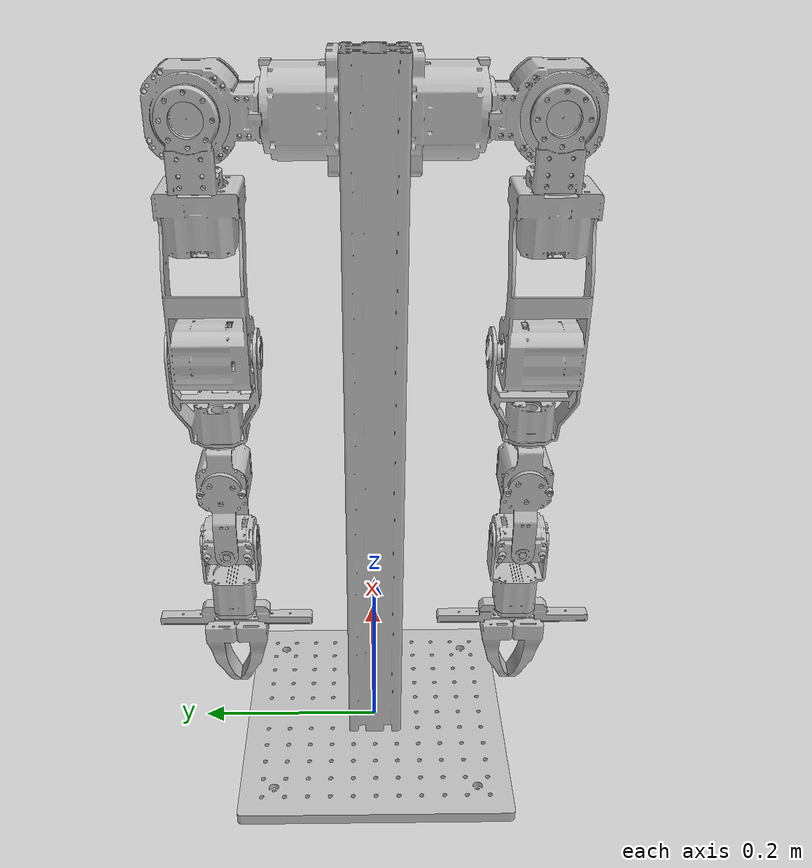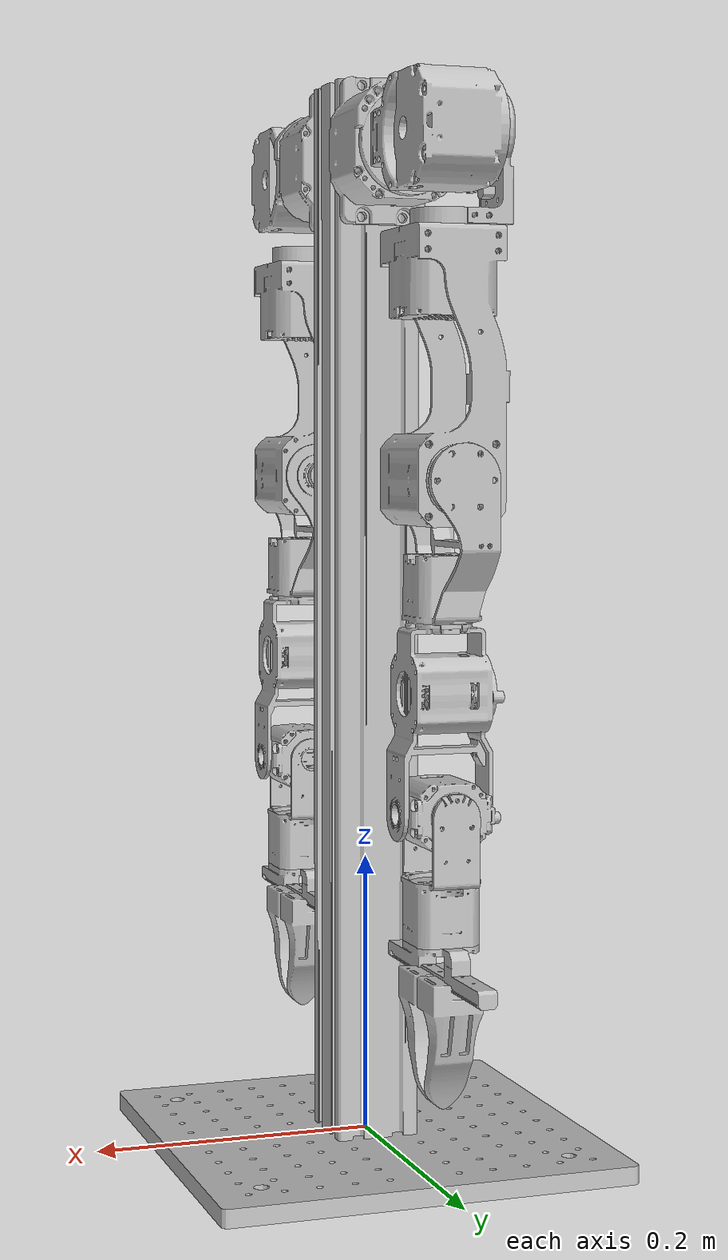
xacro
<?xml version="1.0"?>
<robot xmlns:xacro="http://www.ros.org/wiki/xacro" name="LiteArm_A10_251125_dual">

  <!-- Arguments -->
  <xacro:arg name="left_config_file" default=""/>
  <xacro:arg name="right_config_file" default=""/>
  <xacro:arg name="control_mode" default="position_velocity"/>
  <xacro:arg name="initial_positions_file" default="$(find litearm_config)/config/initial_positions.yaml"/>

  <!-- Import robot description (links and joints) - contains both left and right arms -->
  <xacro:include filename="$(find litearm_a10_251125)/urdf/LiteArm_A10_251125.urdf" />

  <!-- Import hardware ros2_control configurations for both arms -->
  <xacro:include filename="$(find litearm_config)/config/LiteArm_A10_251125_hardware_left_arm.ros2_control.xacro"/>
  <xacro:include filename="$(find litearm_config)/config/LiteArm_A10_251125_hardware.ros2_control.xacro"/>

  <!-- Left arm hardware interface -->
  <xacro:litearm_left_arm_hardware_ros2_control
    name="LiteArmLeftArmHardware"
    config_file="$(arg left_config_file)"
    control_mode="$(arg control_mode)"/>

  <!-- Right arm hardware interface -->
  <xacro:litearm_right_arm_hardware_ros2_control
    name="LiteArmRightArmHardware"
    config_file="$(arg right_config_file)"
    control_mode="$(arg control_mode)"/>

</robot>

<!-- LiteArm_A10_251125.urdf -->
<robot name="LiteArm_A10_251125">
  <mujoco>
    <compiler meshdir="../meshes/" balanceinertia="true" discardvisual="false" inertiafromgeom="false" fusestatic="false" />

  </mujoco>

   <link name="base_link">
     <inertial>
       <origin xyz="0.0 0.0 0.05542218" rpy="0 0 0" />
       <mass value="10.57317707" />
       <inertia ixx="0.35705741" ixy="0.0" ixz="0.0" iyy="0.35705741" iyz="0.0" izz="0.13447021" />
     </inertial>
     <visual>
       <origin xyz="0 0 0" rpy="0 0 0" />
       <geometry>
         <mesh filename="package://litearm_a10_251125/meshes/base_link.STL" />
       </geometry>
       <material name="">
         <color rgba="0.752941176470588 0.752941176470588 0.752941176470588 1" />
       </material>
     </visual>
     <collision>
       <origin xyz="0 0 0" rpy="0 0 0" />
       <geometry>
         <mesh filename="package://litearm_a10_251125/meshes/base_link_simplify.STL" />
       </geometry>
     </collision>
   </link>
   <link name="torso_link">
     <inertial>
       <origin xyz="7.642e-05 0.0 0.00012173" rpy="0 0 0" />
       <mass value="1.94711343" />
       <inertia ixx="0.01104026" ixy="4.23e-06" ixz="-3.57e-06" iyy="0.0021223" iyz="0.0" izz="0.01091172" />
     </inertial>
     <visual>
       <origin xyz="0 0 0" rpy="0 0 0" />
       <geometry>
         <mesh filename="package://litearm_a10_251125/meshes/torso_link.STL" />
       </geometry>
       <material name="">
         <color rgba="0.752941176470588 0.752941176470588 0.752941176470588 1" />
       </material>
     </visual>
     <collision>
       <origin xyz="0 0 0" rpy="0 0 0" />
       <geometry>
         <mesh filename="package://litearm_a10_251125/meshes/torso_link_simplify.STL" />
       </geometry>
     </collision>
   </link>
   <joint name="torso_joint" type="fixed">
     <origin xyz="0 0 0.7" rpy="0 0 0" />
     <parent link="base_link" />
     <child link="torso_link" />
     <axis xyz="0 0 0" />
     <dynamics damping="0.02" friction="0.0"/> <!-- 即使很小的阻尼也能极大改善稳定性 -->
   </joint>
   <link name="l_joint1_link">
     <inertial>
       <origin xyz="-0.00824806 0.05407816 6.022e-05" rpy="0 0 0" />
       <mass value="0.9772017" />
       <inertia ixx="0.00114572" ixy="3.314e-05" ixz="-5e-07" iyy="0.00086384" iyz="-1.53e-06" izz="0.0010431" />
     </inertial>
     <visual>
       <origin xyz="0 0 0" rpy="0 0 0" />
       <geometry>
         <mesh filename="package://litearm_a10_251125/meshes/l_joint1_link.STL" />
       </geometry>
       <material name="">
         <color rgba="0.752941176470588 0.752941176470588 0.752941176470588 1" />
       </material>
     </visual>
     <collision>
       <origin xyz="0 0 0" rpy="0 0 0" />
       <geometry>
         <mesh filename="package://litearm_a10_251125/meshes/l_joint1_link_simplify.STL" />
       </geometry>
     </collision>
   </link>
   <joint name="l_joint1_joint" type="revolute">
     <origin xyz="0 0.096 0" rpy="0 0 0" />
     <parent link="torso_link" />
     <child link="l_joint1_link" />
     <axis xyz="0 1 0" />
     <limit lower="-3.0543" upper="1.6581" effort="75" velocity="6.0737" />
     <dynamics damping="0.02" friction="0.0"/> <!-- 即使很小的阻尼也能极大改善稳定性 -->
   </joint>
   <link name="l_joint2_link">
     <inertial>
       <origin xyz="-0.02317012 0.0 -0.03968965" rpy="0 0 0" />
       <mass value="0.09956239" />
       <inertia ixx="7.689e-05" ixy="0.0" ixz="2.394e-05" iyy="9.208e-05" iyz="0.0" izz="4.871e-05" />
     </inertial>
     <visual>
       <origin xyz="0 0 0" rpy="0 0 0" />
       <geometry>
         <mesh filename="package://litearm_a10_251125/meshes/l_joint2_link.STL" />
       </geometry>
       <material name="">
         <color rgba="0.752941176470588 0.752941176470588 0.752941176470588 1" />
       </material>
     </visual>
     <collision>
       <origin xyz="0 0 0" rpy="0 0 0" />
       <geometry>
         <mesh filename="package://litearm_a10_251125/meshes/l_joint2_link.STL" />
       </geometry>
     </collision>
   </link>
   <joint name="l_joint2_joint" type="revolute">
     <origin xyz="0 0.059 0" rpy="0 0 0" />
     <parent link="l_joint1_link" />
     <child link="l_joint2_link" />
     <axis xyz="-1 0 0" />
     <limit lower="-2.8623" upper="0.27925" effort="75" velocity="6.0737" />
     <dynamics damping="0.02" friction="0.0"/> <!-- 即使很小的阻尼也能极大改善稳定性 -->
   </joint>
   <link name="l_joint3_link">
     <inertial>
       <origin xyz="-0.00293915 -0.00086627 -0.09125362" rpy="0 0 0" />
       <mass value="0.31334613" />
       <inertia ixx="0.00166426" ixy="4e-07" ixz="-1.14e-05" iyy="0.00155026" iyz="-1.701e-05" izz="0.00033935" />
     </inertial>
     <visual>
       <origin xyz="0 0 0" rpy="0 0 0" />
       <geometry>
         <mesh filename="package://litearm_a10_251125/meshes/l_joint3_link.STL" />
       </geometry>
       <material name="">
         <color rgba="0.752941176470588 0.752941176470588 0.752941176470588 1" />
       </material>
     </visual>
     <collision>
       <origin xyz="0 0 0" rpy="0 0 0" />
       <geometry>
         <mesh filename="package://litearm_a10_251125/meshes/l_joint3_link.STL" />
       </geometry>
     </collision>
   </link>
   <joint name="l_joint3_joint" type="revolute">
     <origin xyz="0.00075 0 -0.0646" rpy="0 0 0" />
     <parent link="l_joint2_link" />
     <child link="l_joint3_link" />
     <axis xyz="0 0 -1" />
     <limit lower="-1.5708" upper="1.5708" effort="50" velocity="6.0737" />
     <dynamics damping="0.02" friction="0.0"/> <!-- 即使很小的阻尼也能极大改善稳定性 -->
   </joint>
   <link name="l_joint4_link">
     <inertial>
       <origin xyz="-0.00122074 -0.00107776 -0.05909915" rpy="0 0 0" />
       <mass value="0.35219749" />
       <inertia ixx="0.0004984" ixy="1.9e-07" ixz="6.97e-06" iyy="0.00035525" iyz="2.099e-05" izz="0.00020903" />
     </inertial>
     <visual>
       <origin xyz="0 0 0" rpy="0 0 0" />
       <geometry>
         <mesh filename="package://litearm_a10_251125/meshes/l_joint4_link.STL" />
       </geometry>
       <material name="">
         <color rgba="0.752941176470588 0.752941176470588 0.752941176470588 1" />
       </material>
     </visual>
     <collision>
       <origin xyz="0 0 0" rpy="0 0 0" />
       <geometry>
         <mesh filename="package://litearm_a10_251125/meshes/l_joint4_link.STL" />
       </geometry>
     </collision>
   </link>
   <joint name="l_joint4_joint" type="revolute">
     <origin xyz="0 -5E-05 -0.1615" rpy="0 0 0" />
     <parent link="l_joint3_link" />
     <child link="l_joint4_link" />
     <axis xyz="0 1 0" />
     <limit lower="-2.4435" upper="1.5708" effort="50" velocity="6.0737" />
     <dynamics damping="0.02" friction="0.0"/> <!-- 即使很小的阻尼也能极大改善稳定性 -->
   </joint>
   <link name="l_joint5_link">
     <inertial>
       <origin xyz="-0.00301628 -0.00024339 -0.04784072" rpy="0 0 0" />
       <mass value="0.42918472" />
       <inertia ixx="0.00022593" ixy="2.8e-07" ixz="1.107e-05" iyy="0.0002748" iyz="-3.5e-07" izz="0.0001236" />
     </inertial>
     <visual>
       <origin xyz="0 0 0" rpy="0 0 0" />
       <geometry>
         <mesh filename="package://litearm_a10_251125/meshes/l_joint5_link.STL" />
       </geometry>
       <material name="">
         <color rgba="0.752941176470588 0.752941176470588 0.752941176470588 1" />
       </material>
     </visual>
     <collision>
       <origin xyz="0 0 0" rpy="0 0 0" />
       <geometry>
         <mesh filename="package://litearm_a10_251125/meshes/l_joint5_link.STL" />
       </geometry>
     </collision>
   </link>
   <joint name="l_joint5_joint" type="revolute">
     <origin xyz="0 0 -0.094" rpy="0 0 0" />
     <parent link="l_joint4_link" />
     <child link="l_joint5_link" />
     <axis xyz="0 0 -1" />
     <limit lower="-1.5708" upper="1.5708" effort="10" velocity="10.263" />
     <dynamics damping="0.02" friction="0.0"/> <!-- 即使很小的阻尼也能极大改善稳定性 -->
   </joint>
   <link name="l_joint6_link">
     <inertial>
       <origin xyz="-0.00042158 0.00237788 -0.00011028" rpy="0 0 0" />
       <mass value="0.26605252" />
       <inertia ixx="0.00010511" ixy="-2e-07" ixz="4.4e-07" iyy="0.00010704" iyz="-1.4e-07" izz="0.0001287" />
     </inertial>
     <visual>
       <origin xyz="0 0 0" rpy="0 0 0" />
       <geometry>
         <mesh filename="package://litearm_a10_251125/meshes/l_joint6_link.STL" />
       </geometry>
       <material name="">
         <color rgba="0.752941176470588 0.752941176470588 0.752941176470588 1" />
       </material>
     </visual>
     <collision>
       <origin xyz="0 0 0" rpy="0 0 0" />
       <geometry>
         <mesh filename="package://litearm_a10_251125/meshes/l_joint6_link.STL" />
       </geometry>
     </collision>
   </link>
   <joint name="l_joint6_joint" type="revolute">
     <origin xyz="0 0 -0.1255" rpy="0 0 0" />
     <parent link="l_joint5_link" />
     <child link="l_joint6_link" />
     <axis xyz="-1 0 0" />
     <limit lower="-0.76794" upper="0.76794" effort="20" velocity="6.2832" />
     <dynamics damping="0.02" friction="0.0"/> <!-- 即使很小的阻尼也能极大改善稳定性 -->
   </joint>
   <link name="l_joint7_link">
     <inertial>
       <origin xyz="-8.567e-05 0.00077068 -0.06260654" rpy="0 0 0" />
       <mass value="0.23310292" />
       <inertia ixx="0.00019703" ixy="4.3e-07" ixz="-1.6e-07" iyy="0.00017465" iyz="-1.298e-05" izz="0.0001016" />
     </inertial>
     <visual>
       <origin xyz="0 0 0" rpy="0 0 0" />
       <geometry>
         <mesh filename="package://litearm_a10_251125/meshes/l_joint7_link.STL" />
       </geometry>
       <material name="">
         <color rgba="0.752941176470588 0.752941176470588 0.752941176470588 1" />
       </material>
     </visual>
     <collision>
       <origin xyz="0 0 0" rpy="0 0 0" />
       <geometry>
         <mesh filename="package://litearm_a10_251125/meshes/l_joint7_link_simplify.STL" />
       </geometry>
     </collision>
   </link>
   <joint name="l_joint7_joint" type="revolute">
     <origin xyz="0 0 0" rpy="0 0 0" />
     <parent link="l_joint6_link" />
     <child link="l_joint7_link" />
     <axis xyz="0 1 0" />
     <limit lower="-1.5708" upper="1.5708" effort="10" velocity="10.263" />
     <dynamics damping="0.02" friction="0.0"/> <!-- 即使很小的阻尼也能极大改善稳定性 -->
   </joint>
   <link name="l_gripper_link">
     <inertial>
       <origin xyz="6.03e-06 1.102e-05 -0.01065717" rpy="0 0 0" />
       <mass value="0.11713645" />
       <inertia ixx="0.00016864" ixy="-2.14e-06" ixz="0.0" iyy="1.602e-05" iyz="0.0" izz="0.00017264" />
     </inertial>
     <visual>
       <origin xyz="0 0 0" rpy="0 0 0" />
       <geometry>
         <mesh filename="package://litearm_a10_251125/meshes/l_gripper_link.STL" />
       </geometry>
       <material name="">
         <color rgba="0.752941176470588 0.752941176470588 0.752941176470588 1" />
       </material>
     </visual>
     <collision>
       <origin xyz="0 0 0" rpy="0 0 0" />
       <geometry>
         <mesh filename="package://litearm_a10_251125/meshes/l_gripper_link.STL" />
       </geometry>
     </collision>
   </link>
   <joint name="l_gripper_joint" type="fixed">
     <origin xyz="0 0 -0.09015" rpy="0 0 0" />
     <parent link="l_joint7_link" />
     <child link="l_gripper_link" />
     <axis xyz="0 0 0" />
     <limit effort="10" velocity="10.2625360017267" />
     <dynamics damping="0.02" friction="0.0"/> <!-- 即使很小的阻尼也能极大改善稳定性 -->
   </joint>
     <!-- Define the hand_tcp frame -->
  <link name="l_hand_tcp_link"/>
  <joint name="l_hand_tcp__joint" type="fixed">
    <origin rpy="0 0 0" xyz="0 0 0.0845"/>
    <parent link="l_gripper_link"/>
    <child link="l_hand_tcp_link"/>
    <dynamics damping="0.02" friction="0.0"/> <!-- 即使很小的阻尼也能极大改善稳定性 -->
   </joint>

   <link name="l_r_finger_link">
     <inertial>
       <origin xyz="7.42e-05 -0.01775832 -0.027404" rpy="0 0 0" />
       <mass value="0.0948599" />
       <inertia ixx="5.702e-05" ixy="8e-08" ixz="-1.3e-07" iyy="5.837e-05" iyz="3.24e-06" izz="1.536e-05" />
     </inertial>
     <visual>
       <origin xyz="0 0 0" rpy="0 0 0" />
       <geometry>
         <mesh filename="package://litearm_a10_251125/meshes/l_r_finger_link.STL" />
       </geometry>
       <material name="">
         <color rgba="0.752941176470588 0.752941176470588 0.752941176470588 1" />
       </material>
     </visual>
     <collision>
       <origin xyz="0 0 0" rpy="0 0 0" />
       <geometry>
         <mesh filename="package://litearm_a10_251125/meshes/l_r_finger_link.STL" />
       </geometry>
     </collision>
   </link>
   <joint name="l_r_finger_joint" type="prismatic">
     <origin xyz="0 0 -0.0185" rpy="0 0 0" />
     <parent link="l_gripper_link" />
     <child link="l_r_finger_link" />
     <axis xyz="0 -1 0" />
     <limit lower="0" upper="0.0475" effort="10" velocity="10.263" />

     <dynamics damping="0.02" friction="0.0"/> <!-- 即使很小的阻尼也能极大改善稳定性 -->
   </joint>
   <link name="l_l_finger_link">
     <inertial>
       <origin xyz="-7.42e-05 0.01775832 -0.027404" rpy="0 0 0" />
       <mass value="0.0948599" />
       <inertia ixx="5.702e-05" ixy="8e-08" ixz="1.4e-07" iyy="5.837e-05" iyz="-3.24e-06" izz="1.536e-05" />
     </inertial>
     <visual>
       <origin xyz="0 0 0" rpy="0 0 0" />
       <geometry>
         <mesh filename="package://litearm_a10_251125/meshes/l_l_finger_link.STL" />
       </geometry>
       <material name="">
         <color rgba="0.752941176470588 0.752941176470588 0.752941176470588 1" />
       </material>
     </visual>
     <collision>
       <origin xyz="0 0 0" rpy="0 0 0" />
       <geometry>
         <mesh filename="package://litearm_a10_251125/meshes/l_l_finger_link.STL" />
       </geometry>
     </collision>
   </link>
   <joint name="l_l_finger_joint" type="prismatic">
     <origin xyz="0 0 -0.0185" rpy="0 0 0" />
     <parent link="l_gripper_link" />
     <child link="l_l_finger_link" />
     <axis xyz="0 1 0" />
     <limit lower="0" upper="0.0475" effort="10" velocity="10.263" />
     <mimic joint="l_r_finger_joint" multiplier="1.0" offset="0.0"/>
     <dynamics damping="0.02" friction="0.0"/> <!-- 即使很小的阻尼也能极大改善稳定性 -->
   </joint>
   <link name="r_joint1_link">
     <inertial>
       <origin xyz="-0.00824806 -0.05412006 3.006e-05" rpy="0 0 0" />
       <mass value="0.9772017" />
       <inertia ixx="0.00114613" ixy="-3.447e-05" ixz="4.4e-07" iyy="0.00086384" iyz="-1.1e-06" izz="0.0010435" />
     </inertial>
     <visual>
       <origin xyz="0 0 0" rpy="0 0 0" />
       <geometry>
         <mesh filename="package://litearm_a10_251125/meshes/r_joint1_link.STL" />
       </geometry>
       <material name="">
         <color rgba="0.752941176470588 0.752941176470588 0.752941176470588 1" />
       </material>
     </visual>
     <collision>
       <origin xyz="0 0 0" rpy="0 0 0" />
       <geometry>
         <mesh filename="package://litearm_a10_251125/meshes/r_joint1_link_simplify.STL" />
       </geometry>
     </collision>
   </link>
   <joint name="r_joint1_joint" type="revolute">
     <origin xyz="0 -0.096 0" rpy="0 0 0" />
     <parent link="torso_link" />
     <child link="r_joint1_link" />
     <axis xyz="0 -1 0" />
     <limit lower="-1.6581" upper="3.0543" effort="75" velocity="6.0737" />  <!-- 改了 -->
     <dynamics damping="0.02" friction="0.0"/> <!-- 即使很小的阻尼也能极大改善稳定性 -->
   </joint>
   <link name="r_joint2_link">
     <inertial>
       <origin xyz="-0.02317012 0.0 -0.03968965" rpy="0 0 0" />
       <mass value="0.09956239" />
       <inertia ixx="7.689e-05" ixy="0.0" ixz="2.394e-05" iyy="9.208e-05" iyz="0.0" izz="4.871e-05" />
     </inertial>
     <visual>
       <origin xyz="0 0 0" rpy="0 0 0" />
       <geometry>
         <mesh filename="package://litearm_a10_251125/meshes/r_joint2_link.STL" />
       </geometry>
       <material name="">
         <color rgba="0.752941176470588 0.752941176470588 0.752941176470588 1" />
       </material>
     </visual>
     <collision>
       <origin xyz="0 0 0" rpy="0 0 0" />
       <geometry>
         <mesh filename="package://litearm_a10_251125/meshes/r_joint2_link.STL" />
       </geometry>
     </collision>
   </link>
   <joint name="r_joint2_joint" type="revolute">
     <origin xyz="0 -0.059 0" rpy="0 0 0" />
     <parent link="r_joint1_link" />
     <child link="r_joint2_link" />
     <axis xyz="-1 0 0" />
     <limit lower="-2.8623" upper="0.27925" effort="75" velocity="6.0737" />   <!-- 改了 -->
     <dynamics damping="0.02" friction="0.0"/> <!-- 即使很小的阻尼也能极大改善稳定性 -->
   </joint>
   <link name="r_joint3_link">
     <inertial>
       <origin xyz="-0.00270323 0.00075972 -0.09125362" rpy="0 0 0" />
       <mass value="0.31334613" />
       <inertia ixx="0.00166431" ixy="-1.04e-06" ixz="-6.83e-06" iyy="0.00155067" iyz="1.881e-05" izz="0.00033982" />
     </inertial>
     <visual>
       <origin xyz="0 0 0" rpy="0 0 0" />
       <geometry>
         <mesh filename="package://litearm_a10_251125/meshes/r_joint3_link.STL" />
       </geometry>
       <material name="">
         <color rgba="0.752941176470588 0.752941176470588 0.752941176470588 1" />
       </material>
     </visual>
     <collision>
       <origin xyz="0 0 0" rpy="0 0 0" />
       <geometry>
         <mesh filename="package://litearm_a10_251125/meshes/r_joint3_link.STL" />
       </geometry>
     </collision>
   </link>
   <joint name="r_joint3_joint" type="revolute">
     <origin xyz="-0.00468 -0.0044713 -0.06468" rpy="0 0 0" />
     <parent link="r_joint2_link" />
     <child link="r_joint3_link" />
     <axis xyz="0 0 -1" />
     <limit lower="-1.5708" upper="1.5708" effort="50" velocity="6.0737" />
     <dynamics damping="0.02" friction="0.0"/> <!-- 即使很小的阻尼也能极大改善稳定性 -->
   </joint>
   <link name="r_joint4_link">
     <inertial>
       <origin xyz="-0.00123805 0.00095534 -0.05909395" rpy="0 0 0" />
       <mass value="0.35219749" />
       <inertia ixx="0.00049866" ixy="-7.5e-07" ixz="7.25e-06" iyy="0.00035545" iyz="-2.156e-05" izz="0.00020916" />
     </inertial>
     <visual>
       <origin xyz="0 0 0" rpy="0 0 0" />
       <geometry>
         <mesh filename="package://litearm_a10_251125/meshes/r_joint4_link.STL" />
       </geometry>
       <material name="">
         <color rgba="0.752941176470588 0.752941176470588 0.752941176470588 1" />
       </material>
     </visual>
     <collision>
       <origin xyz="0 0 0" rpy="0 0 0" />
       <geometry>
         <mesh filename="package://litearm_a10_251125/meshes/r_joint4_link.STL" />
       </geometry>
     </collision>
   </link>
   <joint name="r_joint4_joint" type="revolute">
     <origin xyz="0.00543 0.0045213 -0.16142" rpy="0 0 0" />
     <parent link="r_joint3_link" />
     <child link="r_joint4_link" />
     <axis xyz="0 -1 0" />
     <limit lower="-1.5708" upper="2.4435" effort="50" velocity="6.0737" /><!-- 改了 -->
     <dynamics damping="0.02" friction="0.0"/> <!-- 即使很小的阻尼也能极大改善稳定性 -->
   </joint>
   <link name="r_joint5_link">
     <inertial>
       <origin xyz="-0.00301628 -0.00024339 -0.04784072" rpy="0 0 0" />
       <mass value="0.42918472" />
       <inertia ixx="0.00022593" ixy="2.8e-07" ixz="1.107e-05" iyy="0.0002748" iyz="-3.5e-07" izz="0.0001236" />
     </inertial>
     <visual>
       <origin xyz="0 0 0" rpy="0 0 0" />
       <geometry>
         <mesh filename="package://litearm_a10_251125/meshes/r_joint5_link.STL" />
       </geometry>
       <material name="">
         <color rgba="0.752941176470588 0.752941176470588 0.752941176470588 1" />
       </material>
     </visual>
     <collision>
       <origin xyz="0 0 0" rpy="0 0 0" />
       <geometry>
         <mesh filename="package://litearm_a10_251125/meshes/r_joint5_link.STL" />
       </geometry>
     </collision>
   </link>
   <joint name="r_joint5_joint" type="revolute">
     <origin xyz="-0.00543 -0.0044713 -0.09408" rpy="0 0 0" />
     <parent link="r_joint4_link" />
     <child link="r_joint5_link" />
     <axis xyz="0 0 -1" />
     <limit lower="-1.5708" upper="1.5708" effort="10" velocity="10.263" />
     <dynamics damping="0.02" friction="0.0"/> <!-- 即使很小的阻尼也能极大改善稳定性 -->
   </joint>
   <link name="r_joint6_link">
     <inertial>
       <origin xyz="-0.00042158 -0.00237788 0.00010463" rpy="0 0 0" />
       <mass value="0.26605252" />
       <inertia ixx="0.00010511" ixy="2e-07" ixz="-4.9e-07" iyy="0.00010704" iyz="-1.3e-07" izz="0.0001287" />
     </inertial>
     <visual>
       <origin xyz="0 0 0" rpy="0 0 0" />
       <geometry>
         <mesh filename="package://litearm_a10_251125/meshes/r_joint6_link.STL" />
       </geometry>
       <material name="">
         <color rgba="0.752941176470588 0.752941176470588 0.752941176470588 1" />
       </material>
     </visual>
     <collision>
       <origin xyz="0 0 0" rpy="0 0 0" />
       <geometry>
         <mesh filename="package://litearm_a10_251125/meshes/r_joint6_link.STL" />
       </geometry>
     </collision>
   </link>
   <joint name="r_joint6_joint" type="revolute">
     <origin xyz="0.00543 0.0044713 -0.12542" rpy="0 0 0" />
     <parent link="r_joint5_link" />
     <child link="r_joint6_link" />
     <axis xyz="-1 0 0" />
     <limit lower="-0.76794" upper="0.76794" effort="20" velocity="6.2832" />
     <dynamics damping="0.02" friction="0.0"/> <!-- 即使很小的阻尼也能极大改善稳定性 -->
   </joint>
   <link name="r_joint7_link">
     <inertial>
       <origin xyz="-8.715e-05 -0.00101597 -0.06260656" rpy="0 0 0" />
       <mass value="0.23310292" />
       <inertia ixx="0.00019693" ixy="4.7e-07" ixz="-1.4e-07" iyy="0.00017465" iyz="1.289e-05" izz="0.0001015" />
     </inertial>
     <visual>
       <origin xyz="0 0 0" rpy="0 0 0" />
       <geometry>
         <mesh filename="package://litearm_a10_251125/meshes/r_joint7_link.STL" />
       </geometry>
       <material name="">
         <color rgba="0.752941176470588 0.752941176470588 0.752941176470588 1" />
       </material>
     </visual>
     <collision>
       <origin xyz="0 0 0" rpy="0 0 0" />
       <geometry>
         <mesh filename="package://litearm_a10_251125/meshes/r_joint7_link_simplify.STL" />
       </geometry>
     </collision>
   </link>
   <joint name="r_joint7_joint" type="revolute">
     <origin xyz="0 0 0" rpy="0 0 0" />
     <parent link="r_joint6_link" />
     <child link="r_joint7_link" />
     <axis xyz="0 -1 0" />
     <limit lower="-1.5708" upper="1.5708" effort="10" velocity="10.263" />
     <dynamics damping="0.02" friction="0.0"/> <!-- 即使很小的阻尼也能极大改善稳定性 -->
   </joint>
   <link name="r_gripper_link">
     <inertial>
       <origin xyz="0.00543605 0.00448234 -0.01057694" rpy="0 0 0" />
       <mass value="0.11713645" />
       <inertia ixx="0.00016864" ixy="-2.14e-06" ixz="0.0" iyy="1.602e-05" iyz="0.0" izz="0.00017264" />
     </inertial>
     <visual>
       <origin xyz="0 0 0" rpy="0 0 0" />
       <geometry>
         <mesh filename="package://litearm_a10_251125/meshes/r_gripper_link.STL" />
       </geometry>
       <material name="">
         <color rgba="0.752941176470588 0.752941176470588 0.752941176470588 1" />
       </material>
     </visual>
     <collision>
       <origin xyz="0 0 0" rpy="0 0 0" />
       <geometry>
         <mesh filename="package://litearm_a10_251125/meshes/r_gripper_link.STL" />
       </geometry>
     </collision>
   </link>
   <joint name="r_gripper_joint" type="fixed">
     <origin xyz="-0.00543 -0.0044713 -0.09023" rpy="0 0 0" />
     <parent link="r_joint7_link" />
     <child link="r_gripper_link" />
     <axis xyz="0 0 0" />
     <limit effort="10" velocity="10.263" />
     <dynamics damping="0.02" friction="0.0"/> <!-- 即使很小的阻尼也能极大改善稳定性 -->
   </joint>
  <link name="r_hand_tcp_link"/>
  <joint name="r_hand_tcp__joint" type="fixed">
    <origin rpy="0 0 0" xyz="0 0 0.0845"/>
    <parent link="r_gripper_link"/>
    <child link="r_hand_tcp_link"/>
    <dynamics damping="0.02" friction="0.0"/> <!-- 即使很小的阻尼也能极大改善稳定性 -->
   </joint>
   <link name="r_r_finger_link">
     <inertial>
       <origin xyz="7.42e-05 -0.01775832 -0.027404" rpy="0 0 0" />
       <mass value="0.0948599" />
       <inertia ixx="5.702e-05" ixy="8e-08" ixz="-1.3e-07" iyy="5.837e-05" iyz="3.24e-06" izz="1.536e-05" />
     </inertial>
     <visual>
       <origin xyz="0 0 0" rpy="0 0 0" />
       <geometry>
         <mesh filename="package://litearm_a10_251125/meshes/r_r_finger_link.STL" />
       </geometry>
       <material name="">
         <color rgba="0.752941176470588 0.752941176470588 0.752941176470588 1" />
       </material>
     </visual>
     <collision>
       <origin xyz="0 0 0" rpy="0 0 0" />
       <geometry>
         <mesh filename="package://litearm_a10_251125/meshes/r_r_finger_link.STL" />
       </geometry>
     </collision>
   </link>
   <joint name="r_r_finger_joint" type="prismatic">
     <origin xyz="0.00543 0.0044713 -0.01842" rpy="0 0 0" />
     <parent link="r_gripper_link" />
     <child link="r_r_finger_link" />
     <axis xyz="0 -1 0" />
     <limit lower="0" upper="0.0475" effort="10" velocity="10.263" />

     <dynamics damping="0.02" friction="0.0"/> <!-- 即使很小的阻尼也能极大改善稳定性 -->
   </joint>
   <link name="r_l_finger_link">
     <inertial>
       <origin xyz="-7.42e-05 0.01775832 -0.027404" rpy="0 0 0" />
       <mass value="0.0948599" />
       <inertia ixx="5.702e-05" ixy="8e-08" ixz="1.4e-07" iyy="5.837e-05" iyz="-3.24e-06" izz="1.536e-05" />
     </inertial>
     <visual>
       <origin xyz="0 0 0" rpy="0 0 0" />
       <geometry>
         <mesh filename="package://litearm_a10_251125/meshes/r_l_finger_link.STL" />
       </geometry>
       <material name="">
         <color rgba="0.752941176470588 0.752941176470588 0.752941176470588 1" />
       </material>
     </visual>
     <collision>
       <origin xyz="0 0 0" rpy="0 0 0" />
       <geometry>
         <mesh filename="package://litearm_a10_251125/meshes/r_l_finger_link.STL" />
       </geometry>
     </collision>
   </link>
   <joint name="r_l_finger_joint" type="prismatic">
     <origin xyz="0.00543 0.0044713 -0.01842" rpy="0 0 0" />
     <parent link="r_gripper_link" />
     <child link="r_l_finger_link" />
     <axis xyz="0 1 0" />
     <limit lower="0.0" upper="0.0475" effort="10" velocity="10.263" />
     <mimic joint="r_r_finger_joint" multiplier="1.0" offset="0.0"/>
     <dynamics damping="0.02" friction="0.0"/> <!-- 即使很小的阻尼也能极大改善稳定性 -->
   </joint>

 </robot>
